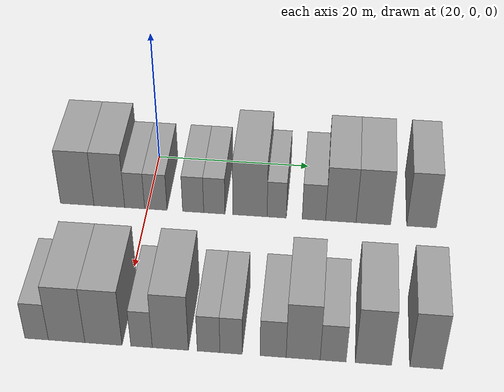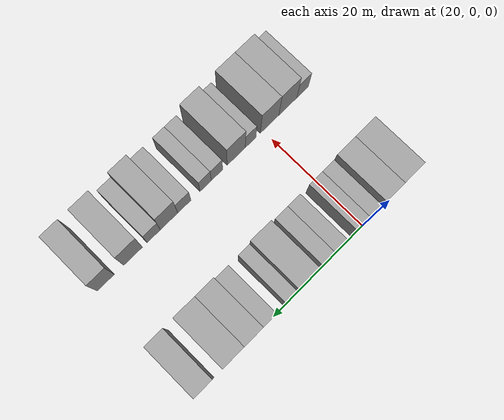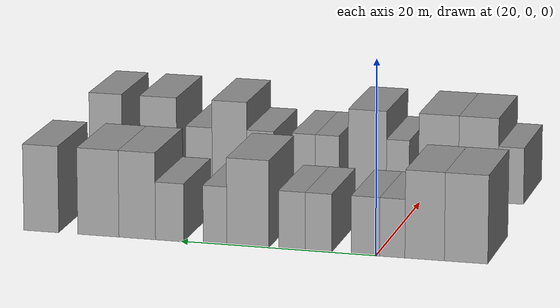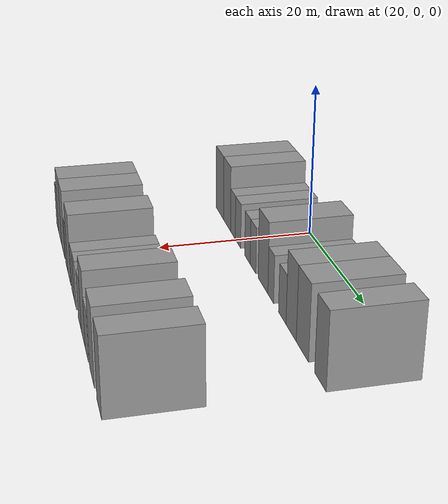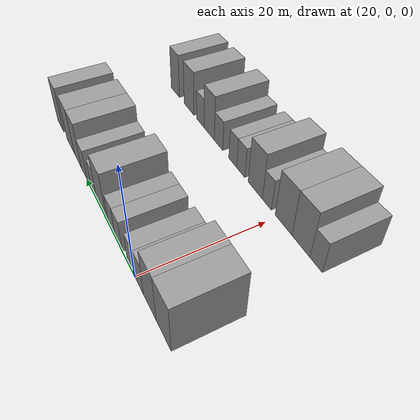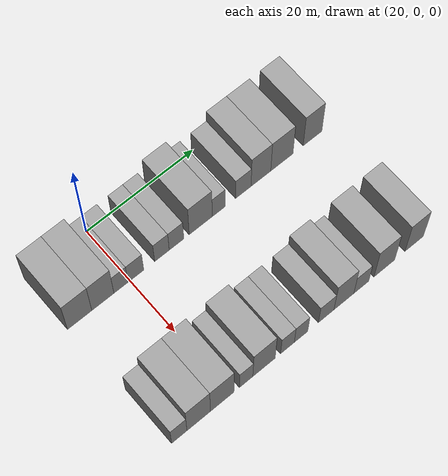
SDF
<sdf version="1.6">
 <world name="default">
  <model name="building_50">
   <static>1</static>
   <pose>25.0000 -9.0955 0 0.000000 0.000000 0.000000</pose>
   <link name="link">
    <pose>0 0 4.50 0 0 0</pose>
    <collision name="collision"><geometry><box><size>10.0000 4.3460 9.0000</size></box></geometry></collision>
    <visual name="visual">
     <cast_shadows>0</cast_shadows>
     <geometry><box><size>10.0000 4.3460 9.0000</size></box></geometry>
     <material>
      <script>
       <uri>model://grey_wall/materials/scripts</uri>
       <uri>model://grey_wall/materials/textures</uri>
       <name>vrc/grey_wall</name>
      </script>
     </material>
    </visual>
   </link>
  </model>
  <model name="building_51">
   <static>1</static>
   <pose>25.0000 -4.9324 0 0.000000 0.000000 0.000000</pose>
   <link name="link">
    <pose>0 0 4.50 0 0 0</pose>
    <collision name="collision"><geometry><box><size>10.0000 3.9801 9.0000</size></box></geometry></collision>
    <visual name="visual">
     <cast_shadows>0</cast_shadows>
     <geometry><box><size>10.0000 3.9801 9.0000</size></box></geometry>
     <material>
      <script>
       <uri>model://grey_wall/materials/scripts</uri>
       <uri>model://grey_wall/materials/textures</uri>
       <name>vrc/grey_wall</name>
      </script>
     </material>
    </visual>
   </link>
  </model>
  <model name="building_52">
   <static>1</static>
   <pose>25.0000 -1.6606 0 0.000000 0.000000 0.000000</pose>
   <link name="link">
    <pose>0 0 3.00 0 0 0</pose>
    <collision name="collision"><geometry><box><size>10.0000 2.5635 6.0000</size></box></geometry></collision>
    <visual name="visual">
     <cast_shadows>0</cast_shadows>
     <geometry><box><size>10.0000 2.5635 6.0000</size></box></geometry>
     <material>
      <script>
       <uri>model://grey_wall/materials/scripts</uri>
       <uri>model://grey_wall/materials/textures</uri>
       <name>vrc/grey_wall</name>
      </script>
     </material>
    </visual>
   </link>
  </model>
  <model name="building_53">
   <static>1</static>
   <pose>25.0000 1.0606 0 0.000000 0.000000 0.000000</pose>
   <link name="link">
    <pose>0 0 3.00 0 0 0</pose>
    <collision name="collision"><geometry><box><size>10.0000 2.8790 6.0000</size></box></geometry></collision>
    <visual name="visual">
     <cast_shadows>0</cast_shadows>
     <geometry><box><size>10.0000 2.8790 6.0000</size></box></geometry>
     <material>
      <script>
       <uri>model://grey_wall/materials/scripts</uri>
       <uri>model://grey_wall/materials/textures</uri>
       <name>vrc/grey_wall</name>
      </script>
     </material>
    </visual>
   </link>
  </model>
  <model name="building_54">
   <static>1</static>
   <pose>25.0000 5.8469 0 0.000000 0.000000 0.000000</pose>
   <link name="link">
    <pose>0 0 3.00 0 0 0</pose>
    <collision name="collision"><geometry><box><size>10.0000 2.6937 6.0000</size></box></geometry></collision>
    <visual name="visual">
     <cast_shadows>0</cast_shadows>
     <geometry><box><size>10.0000 2.6937 6.0000</size></box></geometry>
     <material>
      <script>
       <uri>model://grey_wall/materials/scripts</uri>
       <uri>model://grey_wall/materials/textures</uri>
       <name>vrc/grey_wall</name>
      </script>
     </material>
    </visual>
   </link>
  </model>
  <model name="building_55">
   <static>1</static>
   <pose>25.0000 8.5517 0 0.000000 0.000000 0.000000</pose>
   <link name="link">
    <pose>0 0 3.00 0 0 0</pose>
    <collision name="collision"><geometry><box><size>10.0000 2.7158 6.0000</size></box></geometry></collision>
    <visual name="visual">
     <cast_shadows>0</cast_shadows>
     <geometry><box><size>10.0000 2.7158 6.0000</size></box></geometry>
     <material>
      <script>
       <uri>model://grey_wall/materials/scripts</uri>
       <uri>model://grey_wall/materials/textures</uri>
       <name>vrc/grey_wall</name>
      </script>
     </material>
    </visual>
   </link>
  </model>
  <model name="building_56">
   <static>1</static>
   <pose>25.0000 13.0838 0 0.000000 0.000000 0.000000</pose>
   <link name="link">
    <pose>0 0 4.50 0 0 0</pose>
    <collision name="collision"><geometry><box><size>10.0000 4.3484 9.0000</size></box></geometry></collision>
    <visual name="visual">
     <cast_shadows>0</cast_shadows>
     <geometry><box><size>10.0000 4.3484 9.0000</size></box></geometry>
     <material>
      <script>
       <uri>model://grey_wall/materials/scripts</uri>
       <uri>model://grey_wall/materials/textures</uri>
       <name>vrc/grey_wall</name>
      </script>
     </material>
    </visual>
   </link>
  </model>
  <model name="building_57">
   <static>1</static>
   <pose>25.0000 16.4776 0 0.000000 0.000000 0.000000</pose>
   <link name="link">
    <pose>0 0 3.00 0 0 0</pose>
    <collision name="collision"><geometry><box><size>10.0000 2.4392 6.0000</size></box></geometry></collision>
    <visual name="visual">
     <cast_shadows>0</cast_shadows>
     <geometry><box><size>10.0000 2.4392 6.0000</size></box></geometry>
     <material>
      <script>
       <uri>model://grey_wall/materials/scripts</uri>
       <uri>model://grey_wall/materials/textures</uri>
       <name>vrc/grey_wall</name>
      </script>
     </material>
    </visual>
   </link>
  </model>
  <model name="building_58">
   <static>1</static>
   <pose>25.0000 21.1760 0 0.000000 0.000000 0.000000</pose>
   <link name="link">
    <pose>0 0 3.00 0 0 0</pose>
    <collision name="collision"><geometry><box><size>10.0000 2.9576 6.0000</size></box></geometry></collision>
    <visual name="visual">
     <cast_shadows>0</cast_shadows>
     <geometry><box><size>10.0000 2.9576 6.0000</size></box></geometry>
     <material>
      <script>
       <uri>model://grey_wall/materials/scripts</uri>
       <uri>model://grey_wall/materials/textures</uri>
       <name>vrc/grey_wall</name>
      </script>
     </material>
    </visual>
   </link>
  </model>
  <model name="building_59">
   <static>1</static>
   <pose>25.0000 24.5634 0 0.000000 0.000000 0.000000</pose>
   <link name="link">
    <pose>0 0 4.50 0 0 0</pose>
    <collision name="collision"><geometry><box><size>10.0000 3.8172 9.0000</size></box></geometry></collision>
    <visual name="visual">
     <cast_shadows>0</cast_shadows>
     <geometry><box><size>10.0000 3.8172 9.0000</size></box></geometry>
     <material>
      <script>
       <uri>model://grey_wall/materials/scripts</uri>
       <uri>model://grey_wall/materials/textures</uri>
       <name>vrc/grey_wall</name>
      </script>
     </material>
    </visual>
   </link>
  </model>
  <model name="building_60">
   <static>1</static>
   <pose>25.0000 28.6364 0 0.000000 0.000000 0.000000</pose>
   <link name="link">
    <pose>0 0 4.50 0 0 0</pose>
    <collision name="collision"><geometry><box><size>10.0000 4.3287 9.0000</size></box></geometry></collision>
    <visual name="visual">
     <cast_shadows>0</cast_shadows>
     <geometry><box><size>10.0000 4.3287 9.0000</size></box></geometry>
     <material>
      <script>
       <uri>model://grey_wall/materials/scripts</uri>
       <uri>model://grey_wall/materials/textures</uri>
       <name>vrc/grey_wall</name>
      </script>
     </material>
    </visual>
   </link>
  </model>
  <model name="building_61">
   <static>1</static>
   <pose>25.0000 34.6483 0 0.000000 0.000000 0.000000</pose>
   <link name="link">
    <pose>0 0 4.50 0 0 0</pose>
    <collision name="collision"><geometry><box><size>10.0000 3.6950 9.0000</size></box></geometry></collision>
    <visual name="visual">
     <cast_shadows>0</cast_shadows>
     <geometry><box><size>10.0000 3.6950 9.0000</size></box></geometry>
     <material>
      <script>
       <uri>model://grey_wall/materials/scripts</uri>
       <uri>model://grey_wall/materials/textures</uri>
       <name>vrc/grey_wall</name>
      </script>
     </material>
    </visual>
   </link>
  </model>
  <model name="building_143">
   <static>1</static>
   <pose>47.0000 -9.1778 0 0.000000 0.000000 0.000000</pose>
   <link name="link">
    <pose>0 0 3.00 0 0 0</pose>
    <collision name="collision"><geometry><box><size>10.0000 2.7019 6.0000</size></box></geometry></collision>
    <visual name="visual">
     <cast_shadows>0</cast_shadows>
     <geometry><box><size>10.0000 2.7019 6.0000</size></box></geometry>
     <material>
      <script>
       <uri>model://grey_wall/materials/scripts</uri>
       <uri>model://grey_wall/materials/textures</uri>
       <name>vrc/grey_wall</name>
      </script>
     </material>
    </visual>
   </link>
  </model>
  <model name="building_144">
   <static>1</static>
   <pose>47.0000 -5.7334 0 0.000000 0.000000 0.000000</pose>
   <link name="link">
    <pose>0 0 4.50 0 0 0</pose>
    <collision name="collision"><geometry><box><size>10.0000 4.1870 9.0000</size></box></geometry></collision>
    <visual name="visual">
     <cast_shadows>0</cast_shadows>
     <geometry><box><size>10.0000 4.1870 9.0000</size></box></geometry>
     <material>
      <script>
       <uri>model://grey_wall/materials/scripts</uri>
       <uri>model://grey_wall/materials/textures</uri>
       <name>vrc/grey_wall</name>
      </script>
     </material>
    </visual>
   </link>
  </model>
  <model name="building_145">
   <static>1</static>
   <pose>47.0000 -1.5194 0 0.000000 0.000000 0.000000</pose>
   <link name="link">
    <pose>0 0 4.50 0 0 0</pose>
    <collision name="collision"><geometry><box><size>10.0000 4.2410 9.0000</size></box></geometry></collision>
    <visual name="visual">
     <cast_shadows>0</cast_shadows>
     <geometry><box><size>10.0000 4.2410 9.0000</size></box></geometry>
     <material>
      <script>
       <uri>model://grey_wall/materials/scripts</uri>
       <uri>model://grey_wall/materials/textures</uri>
       <name>vrc/grey_wall</name>
      </script>
     </material>
    </visual>
   </link>
  </model>
  <model name="building_146">
   <static>1</static>
   <pose>47.0000 2.8180 0 0.000000 0.000000 0.000000</pose>
   <link name="link">
    <pose>0 0 3.00 0 0 0</pose>
    <collision name="collision"><geometry><box><size>10.0000 2.4338 6.0000</size></box></geometry></collision>
    <visual name="visual">
     <cast_shadows>0</cast_shadows>
     <geometry><box><size>10.0000 2.4338 6.0000</size></box></geometry>
     <material>
      <script>
       <uri>model://grey_wall/materials/scripts</uri>
       <uri>model://grey_wall/materials/textures</uri>
       <name>vrc/grey_wall</name>
      </script>
     </material>
    </visual>
   </link>
  </model>
  <model name="building_147">
   <static>1</static>
   <pose>47.0000 6.0800 0 0.000000 0.000000 0.000000</pose>
   <link name="link">
    <pose>0 0 4.50 0 0 0</pose>
    <collision name="collision"><geometry><box><size>10.0000 4.0900 9.0000</size></box></geometry></collision>
    <visual name="visual">
     <cast_shadows>0</cast_shadows>
     <geometry><box><size>10.0000 4.0900 9.0000</size></box></geometry>
     <material>
      <script>
       <uri>model://grey_wall/materials/scripts</uri>
       <uri>model://grey_wall/materials/textures</uri>
       <name>vrc/grey_wall</name>
      </script>
     </material>
    </visual>
   </link>
  </model>
  <model name="building_148">
   <static>1</static>
   <pose>47.0000 10.3995 0 0.000000 0.000000 0.000000</pose>
   <link name="link">
    <pose>0 0 3.00 0 0 0</pose>
    <collision name="collision"><geometry><box><size>10.0000 2.5490 6.0000</size></box></geometry></collision>
    <visual name="visual">
     <cast_shadows>0</cast_shadows>
     <geometry><box><size>10.0000 2.5490 6.0000</size></box></geometry>
     <material>
      <script>
       <uri>model://grey_wall/materials/scripts</uri>
       <uri>model://grey_wall/materials/textures</uri>
       <name>vrc/grey_wall</name>
      </script>
     </material>
    </visual>
   </link>
  </model>
  <model name="building_149">
   <static>1</static>
   <pose>47.0000 12.9273 0 0.000000 0.000000 0.000000</pose>
   <link name="link">
    <pose>0 0 3.00 0 0 0</pose>
    <collision name="collision"><geometry><box><size>10.0000 2.5065 6.0000</size></box></geometry></collision>
    <visual name="visual">
     <cast_shadows>0</cast_shadows>
     <geometry><box><size>10.0000 2.5065 6.0000</size></box></geometry>
     <material>
      <script>
       <uri>model://grey_wall/materials/scripts</uri>
       <uri>model://grey_wall/materials/textures</uri>
       <name>vrc/grey_wall</name>
      </script>
     </material>
    </visual>
   </link>
  </model>
  <model name="building_150">
   <static>1</static>
   <pose>47.0000 17.6413 0 0.000000 0.000000 0.000000</pose>
   <link name="link">
    <pose>0 0 3.00 0 0 0</pose>
    <collision name="collision"><geometry><box><size>10.0000 2.9215 6.0000</size></box></geometry></collision>
    <visual name="visual">
     <cast_shadows>0</cast_shadows>
     <geometry><box><size>10.0000 2.9215 6.0000</size></box></geometry>
     <material>
      <script>
       <uri>model://grey_wall/materials/scripts</uri>
       <uri>model://grey_wall/materials/textures</uri>
       <name>vrc/grey_wall</name>
      </script>
     </material>
    </visual>
   </link>
  </model>
  <model name="building_151">
   <static>1</static>
   <pose>47.0000 20.9936 0 0.000000 0.000000 0.000000</pose>
   <link name="link">
    <pose>0 0 4.50 0 0 0</pose>
    <collision name="collision"><geometry><box><size>10.0000 3.7832 9.0000</size></box></geometry></collision>
    <visual name="visual">
     <cast_shadows>0</cast_shadows>
     <geometry><box><size>10.0000 3.7832 9.0000</size></box></geometry>
     <material>
      <script>
       <uri>model://grey_wall/materials/scripts</uri>
       <uri>model://grey_wall/materials/textures</uri>
       <name>vrc/grey_wall</name>
      </script>
     </material>
    </visual>
   </link>
  </model>
  <model name="building_152">
   <static>1</static>
   <pose>47.0000 24.3243 0 0.000000 0.000000 0.000000</pose>
   <link name="link">
    <pose>0 0 3.00 0 0 0</pose>
    <collision name="collision"><geometry><box><size>10.0000 2.8781 6.0000</size></box></geometry></collision>
    <visual name="visual">
     <cast_shadows>0</cast_shadows>
     <geometry><box><size>10.0000 2.8781 6.0000</size></box></geometry>
     <material>
      <script>
       <uri>model://grey_wall/materials/scripts</uri>
       <uri>model://grey_wall/materials/textures</uri>
       <name>vrc/grey_wall</name>
      </script>
     </material>
    </visual>
   </link>
  </model>
  <model name="building_153">
   <static>1</static>
   <pose>47.0000 28.7708 0 0.000000 0.000000 0.000000</pose>
   <link name="link">
    <pose>0 0 4.50 0 0 0</pose>
    <collision name="collision"><geometry><box><size>10.0000 4.0150 9.0000</size></box></geometry></collision>
    <visual name="visual">
     <cast_shadows>0</cast_shadows>
     <geometry><box><size>10.0000 4.0150 9.0000</size></box></geometry>
     <material>
      <script>
       <uri>model://grey_wall/materials/scripts</uri>
       <uri>model://grey_wall/materials/textures</uri>
       <name>vrc/grey_wall</name>
      </script>
     </material>
    </visual>
   </link>
  </model>
  <model name="building_154">
   <static>1</static>
   <pose>47.0000 34.5824 0 0.000000 0.000000 0.000000</pose>
   <link name="link">
    <pose>0 0 4.50 0 0 0</pose>
    <collision name="collision"><geometry><box><size>10.0000 3.6082 9.0000</size></box></geometry></collision>
    <visual name="visual">
     <cast_shadows>0</cast_shadows>
     <geometry><box><size>10.0000 3.6082 9.0000</size></box></geometry>
     <material>
      <script>
       <uri>model://grey_wall/materials/scripts</uri>
       <uri>model://grey_wall/materials/textures</uri>
       <name>vrc/grey_wall</name>
      </script>
     </material>
    </visual>
   </link>
  </model>
 </world>
</sdf>
